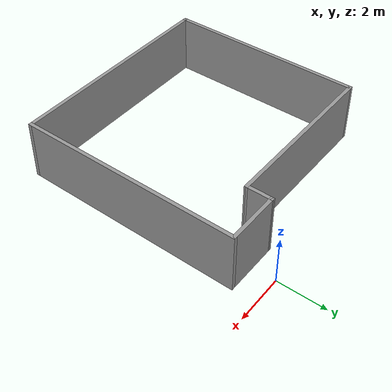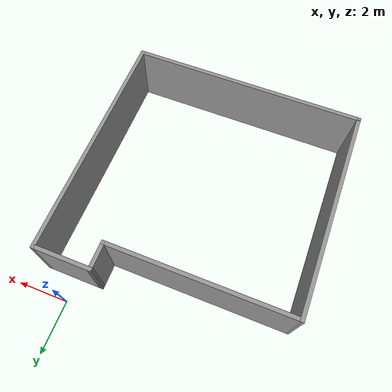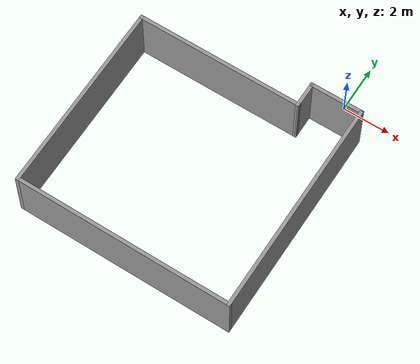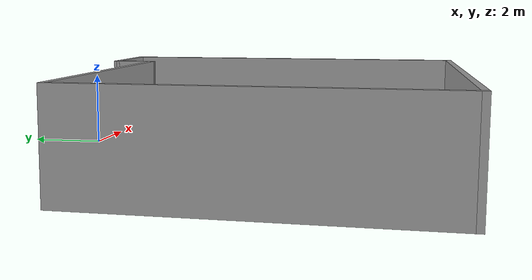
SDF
<?xml version='1.0'?>
<sdf version='1.6'>
  <model name='ortam_duvar'>
    <pose frame=''>-3.41016 -5.58492 0 0 -0 0</pose>
    <link name='Wall_10'>
      <collision name='Wall_10_Collision'>
        <geometry>
          <box>
            <size>8.3 0.15 2.5</size>
          </box>
        </geometry>
        <pose frame=''>0 0 1.25 0 -0 0</pose>
      </collision>
      <visual name='Wall_10_Visual'>
        <pose frame=''>0 0 1.25 0 -0 0</pose>
        <geometry>
          <box>
            <size>8.3 0.15 2.5</size>
          </box>
        </geometry>
        <material>
          <script>
            <uri>file://media/materials/scripts/gazebo.material</uri>
            <name>Gazebo/Grey</name>
          </script>
          <ambient>1 1 1 1</ambient>
        </material>
      </visual>
      <pose frame=''>-4.57484 -0.500083 0 0 -0 1.5708</pose>
    </link>
    <link name='Wall_12'>
      <collision name='Wall_12_Collision'>
        <geometry>
          <box>
            <size>7.15 0.15 2.5</size>
          </box>
        </geometry>
        <pose frame=''>0 0 1.25 0 -0 0</pose>
      </collision>
      <visual name='Wall_12_Visual'>
        <pose frame=''>0 0 1.25 0 -0 0</pose>
        <geometry>
          <box>
            <size>7.15 0.15 2.5</size>
          </box>
        </geometry>
        <material>
          <script>
            <uri>file://media/materials/scripts/gazebo.material</uri>
            <name>Gazebo/Grey</name>
          </script>
          <ambient>1 1 1 1</ambient>
        </material>
      </visual>
      <pose frame=''>-1.07484 3.57499 0 0 -0 2.1e-05</pose>
    </link>
    <link name='Wall_14'>
      <collision name='Wall_14_Collision'>
        <geometry>
          <box>
            <size>1.15 0.15 2.5</size>
          </box>
        </geometry>
        <pose frame=''>0 0 1.25 0 -0 0</pose>
      </collision>
      <visual name='Wall_14_Visual'>
        <pose frame=''>0 0 1.25 0 -0 0</pose>
        <geometry>
          <box>
            <size>1.15 0.15 2.5</size>
          </box>
        </geometry>
        <material>
          <script>
            <uri>file://media/materials/scripts/gazebo.material</uri>
            <name>Gazebo/Grey</name>
          </script>
          <ambient>1 1 1 1</ambient>
        </material>
      </visual>
      <pose frame=''>2.425 4.07506 0 0 -0 1.57111</pose>
    </link>
    <link name='Wall_4'>
      <collision name='Wall_4_Collision'>
        <geometry>
          <box>
            <size>2.3 0.15 2.5</size>
          </box>
        </geometry>
        <pose frame=''>0 0 1.25 0 -0 0</pose>
      </collision>
      <visual name='Wall_4_Visual'>
        <pose frame=''>0 0 1.25 0 -0 0</pose>
        <geometry>
          <box>
            <size>2.3 0.15 2.5</size>
          </box>
        </geometry>
        <material>
          <script>
            <uri>file://media/materials/scripts/gazebo.material</uri>
            <name>Gazebo/Grey</name>
          </script>
          <ambient>1 1 1 1</ambient>
        </material>
      </visual>
      <pose frame=''>3.49984 4.57506 0 0 -0 3.14159</pose>
    </link>
    <link name='Wall_6'>
      <collision name='Wall_6_Collision'>
        <geometry>
          <box>
            <size>9.3 0.15 2.5</size>
          </box>
        </geometry>
        <pose frame=''>0 0 1.25 0 -0 0</pose>
      </collision>
      <visual name='Wall_6_Visual'>
        <pose frame=''>0 0 1.25 0 -0 0</pose>
        <geometry>
          <box>
            <size>9.3 0.15 2.5</size>
          </box>
        </geometry>
        <material>
          <script>
            <uri>file://media/materials/scripts/gazebo.material</uri>
            <name>Gazebo/Grey</name>
          </script>
          <ambient>1 1 1 1</ambient>
        </material>
      </visual>
      <pose frame=''>4.57484 6.1e-05 0 0 0 -1.5708</pose>
    </link>
    <link name='Wall_8'>
      <collision name='Wall_8_Collision'>
        <geometry>
          <box>
            <size>9.3 0.15 2.5</size>
          </box>
        </geometry>
        <pose frame=''>0 0 1.25 0 -0 0</pose>
      </collision>
      <visual name='Wall_8_Visual'>
        <pose frame=''>0 0 1.25 0 -0 0</pose>
        <geometry>
          <box>
            <size>9.3 0.15 2.5</size>
          </box>
        </geometry>
        <material>
          <script>
            <uri>file://media/materials/scripts/gazebo.material</uri>
            <name>Gazebo/Grey</name>
          </script>
          <ambient>1 1 1 1</ambient>
        </material>
      </visual>
      <pose frame=''>0 -4.57501 0 0 0 -3.14158</pose>
    </link>
    <static>1</static>
  </model>
</sdf>
